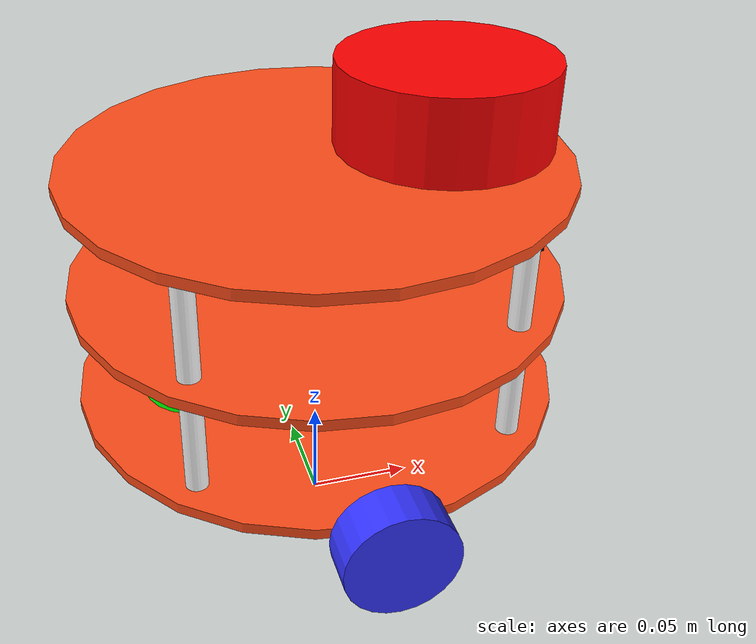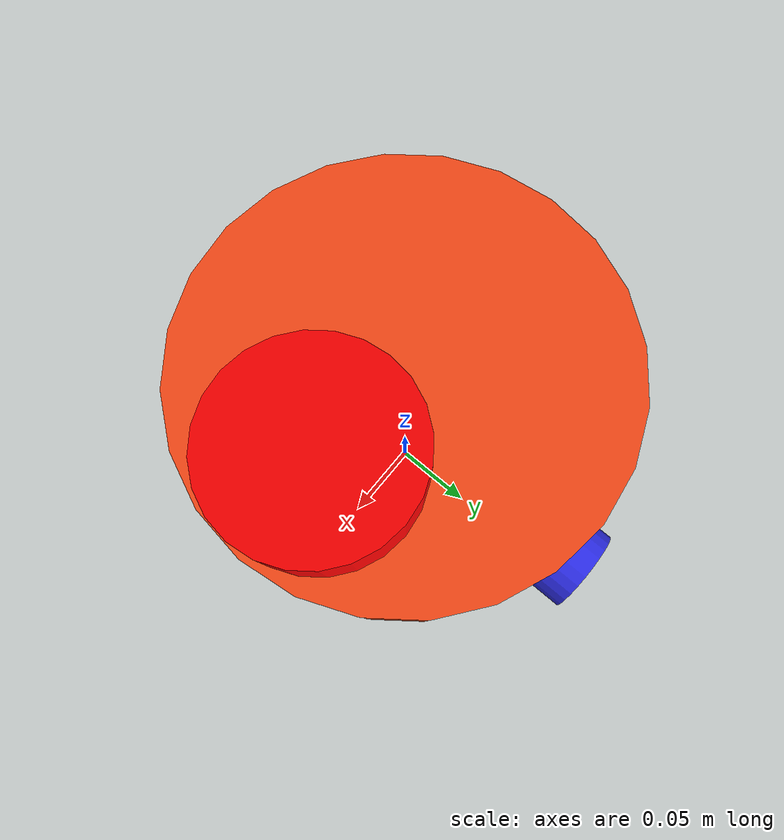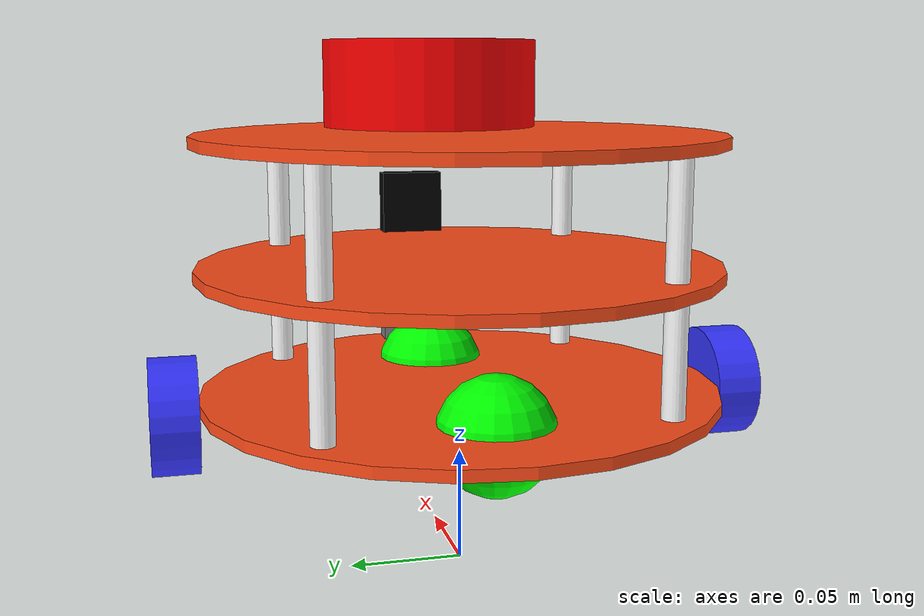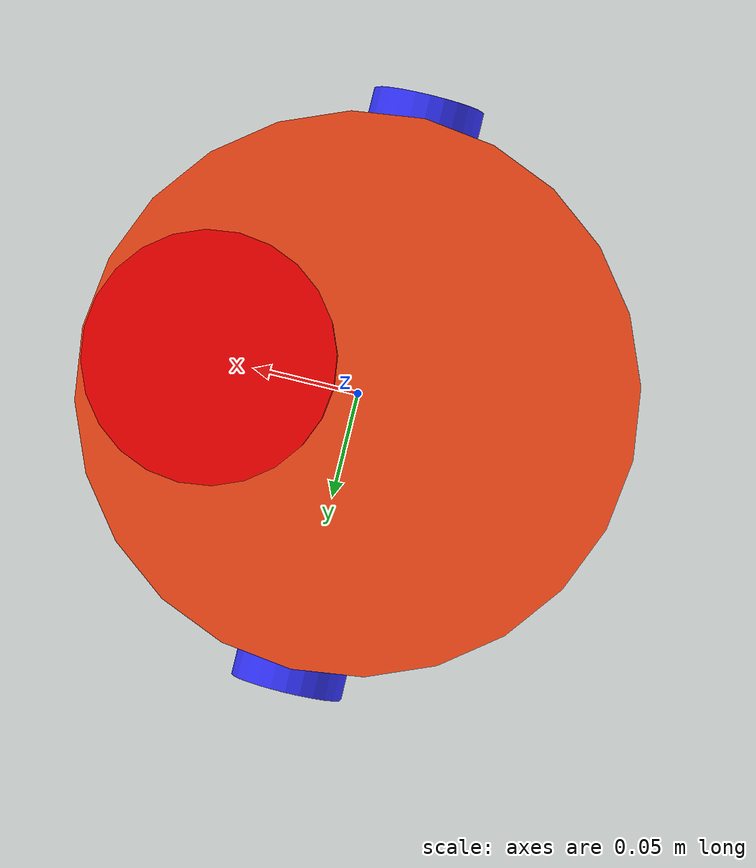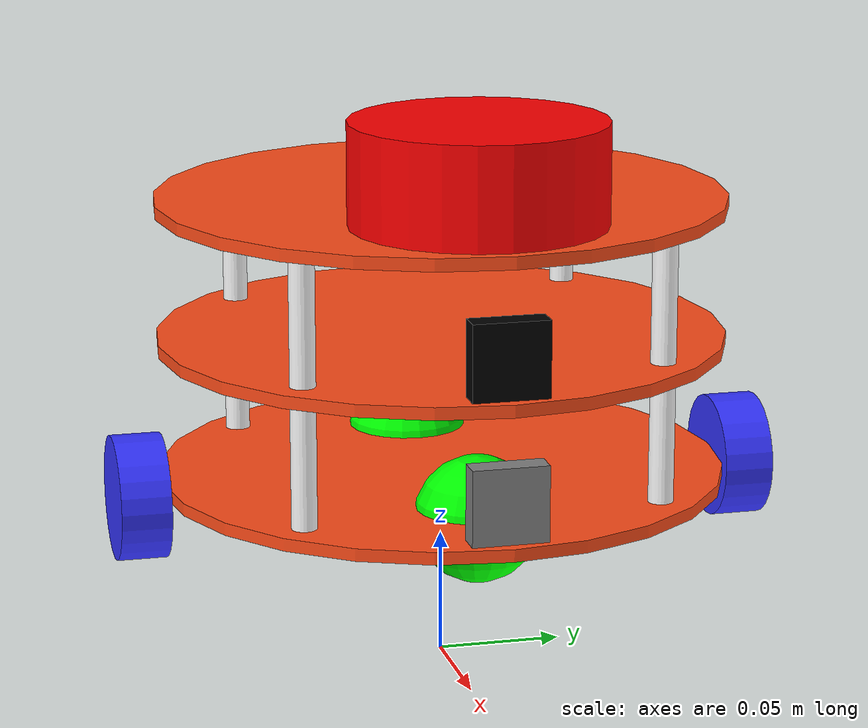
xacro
<?xml version="1.0"?>
<robot xmlns:xacro="http://www.ros.org/wiki/xacro"  name="mobile_robot">

    <xacro:arg name="use_ros2_control" default="true"/>

    <!--
        ##################################################
            include other xacro files
        ##################################################
    -->

    <xacro:include filename="material_colors.xacro"/>
    <xacro:include filename="robot_core.xacro"/>

    <xacro:if value="$(arg use_ros2_control)">
        <xacro:include filename="ros2_control.xacro"/>
    </xacro:if>
    <xacro:unless value="$(arg use_ros2_control)">
        <xacro:include filename="gazebo_control.xacro"/>
    </xacro:unless>

    <!--
        ##################################################
            include other xacro files
        ##################################################
    -->

    <xacro:include filename="robot_sensors/lidar.xacro"/>
    <xacro:include filename="robot_sensors/camera.xacro"/>
    <xacro:include filename="robot_sensors/depth_camera.xacro"/>

    <!--
        ##################################################
            LIDAR sensor
        ##################################################
    -->

    <xacro:robot_lidar
        parent="third_base_plate_link"
        child="laser_frame"
        x="0.174" y="0" z="0.025"
        row="0" pitch="0" yaw="0"
    />

    <!--
        ##################################################
            Camera sensor
        ##################################################
    -->

    <xacro:robot_camera
        parent="first_base_plate_link"
        child="camera_frame"
        x="0.2186" y="0" z="0.02"
        row="0" pitch="0" yaw="0"
    />

    <!--
        ##################################################
            Depth Camera sensor
        ##################################################
    -->

    <xacro:robot_depth_camera
        parent="second_base_plate_link"
        child="camera_depth_frame"
        x="0.2186" y="0" z="0.02"
        row="0" pitch="0" yaw="0"
    />

</robot>

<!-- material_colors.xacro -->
<robot xmlns:xacro="http://www.ros.org/wiki/xacro">

    <!-- Color links -->
    <material name="white">
        <color rgba="1 1 1 1"/>
    </material>

    <material name="orange">
        <color rgba="1 0.3 0.1 1"/>
    </material>

    <material name="blue">
        <color rgba="0.2 0.2 1 1"/>
    </material>

    <material name="black">
        <color rgba="0 0 0 1"/>
    </material>

    <material name="green">
        <color rgba="0 1 0 1"/>
    </material>

    <material name="grey">
        <color rgba="0.5 0.5 0.5 1"/>
    </material>

    <material name="red">
        <color rgba="1 0 0 1"/>
    </material>

</robot>

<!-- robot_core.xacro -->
<robot xmlns:xacro="http://www.ros.org/wiki/xacro">
    <!--
        ##################################################
            include other xacro files
        ##################################################
    -->

    <xacro:include filename="robot_parts/base_plate.xacro"/>
    <xacro:include filename="robot_parts/pillar.xacro"/>
    <xacro:include filename="robot_parts/drive_wheel.xacro"/>
    <xacro:include filename="robot_parts/caster_wheel.xacro"/>

    <!--
        ##################################################
            Base Link
        ##################################################
    -->

    <link name="base_link"/>

    <!--
        ##################################################
            Base Footprint Link
        ##################################################
    -->

    <joint name="base_footprint_joint" type="fixed">
        <parent link="base_link"/>
        <child link="base_footprint"/>
        <origin xyz="0 0 0" rpy="0 0 0"/>
    </joint>

    <link name="base_footprint"/>

    <xacro:robot_base_plate
        parent="base_link"
        child="first_base_plate_link"
        x="-0.1143" y="0" z="0.075"
        row="0" pitch="0" yaw="0"
    />

    <xacro:robot_base_plate
        parent="first_base_plate_link"
        child="second_base_plate_link"
        x="0" y="0" z="0.0558"
        row="0" pitch="0" yaw="0"
    />

    <xacro:robot_base_plate
        parent="second_base_plate_link"
        child="third_base_plate_link"
        x="0" y="0" z="0.0558"
        row="0" pitch="0" yaw="0"
    />

    <!--
        ##################################################
            Pillar offset variables
        ##################################################
    -->

    <xacro:property name="pillar_x_front" value="0.1851"/>
    <xacro:property name="pillar_x_back" value="0.0435"/>
    <xacro:property name="pillar_y_offset" value="0.0708"/>
    <xacro:property name="pillar_z_offset" value="0.005"/>

    <!--
        ##################################################
            Pillars for Base Plate 0
        ##################################################
    -->

    <xacro:robot_pillar
        parent="first_base_plate_link"
        child="first_base_plate_front_right_pillar_link"
        x="${pillar_x_front}" y="${pillar_y_offset}" z="${pillar_z_offset}"
        row="0" pitch="0" yaw="0"
    />

    <xacro:robot_pillar
        parent="first_base_plate_link"
        child="first_base_plate_front_left_pillar_link"
        x="${pillar_x_front}" y="${-pillar_y_offset}" z="${pillar_z_offset}"
        row="0" pitch="0" yaw="0"
    />

    <xacro:robot_pillar
        parent="first_base_plate_link"
        child="first_base_plate_back_right_pillar_link"
        x="${pillar_x_back}" y="${pillar_y_offset}" z="${pillar_z_offset}"
        row="0" pitch="0" yaw="0"
    />

    <xacro:robot_pillar
        parent="first_base_plate_link"
        child="first_base_plate_back_left_pillar_link"
        x="${pillar_x_back}" y="${-pillar_y_offset}" z="${pillar_z_offset}"
        row="0" pitch="0" yaw="0"
    />

    <!--
        ##################################################
            Pillars for Base Plate 1
        ##################################################
    -->

    <xacro:robot_pillar
        parent="second_base_plate_link"
        child="second_base_plate_front_right_pillar_link"
        x="${pillar_x_front}" y="${pillar_y_offset}" z="${pillar_z_offset}"
        row="0" pitch="0" yaw="0"
    />

    <xacro:robot_pillar
        parent="second_base_plate_link"
        child="second_base_plate_front_left_pillar_link"
        x="${pillar_x_front}" y="${-pillar_y_offset}" z="${pillar_z_offset}"
        row="0" pitch="0" yaw="0"
    />

    <xacro:robot_pillar
        parent="second_base_plate_link"
        child="second_base_plate_back_right_pillar_link"
        x="${pillar_x_back}" y="${pillar_y_offset}" z="${pillar_z_offset}"
        row="0" pitch="0" yaw="0"
    />

    <xacro:robot_pillar
        parent="second_base_plate_link"
        child="second_base_plate_back_left_pillar_link"
        x="${pillar_x_back}" y="${-pillar_y_offset}" z="${pillar_z_offset}"
        row="0" pitch="0" yaw="0"
    />

    <!--
        ##################################################
            Drive Wheels
        ##################################################
    -->

    <xacro:robot_wheel
        parent="base_link"
        child="left_wheel_link"
        x="0" y="0.124" z="0.075"
        row="${-pi/2}" pitch="0" yaw="0"
        a="0" b="0" c="1"
    />

    <xacro:robot_wheel
        parent="base_link"
        child="right_wheel_link"
        x="0" y="-0.124" z="0.075"
        row="${pi/2}" pitch="0" yaw="0"
        a="0" b="0" c="-1"
    />

    <xacro:robot_caster_wheel
        parent="first_base_plate_link"
        child="front_caster_wheel_link"
        x="0.174" y="0" z="0"
    />

    <xacro:robot_caster_wheel
        parent="first_base_plate_link"
        child="back_caster_wheel_link"
        x="0.0546" y="0" z="0"
    />

</robot>

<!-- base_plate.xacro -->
<robot xmlns:xacro="http://www.ros.org/wiki/xacro">
    <!-- user-defined parameters for the base plate -->
    <xacro:property name="plate_radius" value="0.1143"/>
    <xacro:property name="plate_length" value="0.005"/>
    <xacro:property name="plate_mass" value="0.5"/>
    <xacro:property name="I_plate" value="${(1/12) * (plate_mass) * ((3 * plate_radius * plate_radius) + (plate_length * plate_length))}"/>
    <xacro:property name="Iz_plate" value="${(1/2) * (plate_mass) * (plate_radius * plate_radius)}"/>

    <!-- base plate with user-defined parameters -->
    <xacro:macro name="robot_base_plate" params="parent child x y z row pitch yaw">

        <!-- joint -->
        <joint name="${child}_joint" type="fixed">
            <parent link="${parent}"/>
            <child link="${child}"/>
            <origin xyz="${x} ${y} ${z}" rpy="${row} ${pitch} ${yaw}"/>
        </joint>

        <!-- link -->
        <link name="${child}">
            <!-- visual -->
            <visual>
                <origin xyz="${plate_radius} 0 ${plate_length/2}" rpy="0 0 0"/>
                <geometry>
                    <cylinder radius="${plate_radius}" length="${plate_length}"/>
                </geometry>
                <material name="orange"/>
            </visual>

            <!-- collision -->
            <collision>
                <origin xyz="${plate_radius} 0 ${plate_length/2}" rpy="0 0 0"/>
                <geometry>
                    <cylinder radius="${plate_radius}" length="${plate_length}"/>
                </geometry>
            </collision>

            <!-- inertia -->
            <inertial>
                <origin xyz="${plate_radius} 0 ${plate_length/2}" rpy="0 0 0"/>
                <mass value="${plate_mass}"/>
                <inertia ixx="${I_plate}"
                        ixy="0.0"
                        ixz="0.0"
                        iyy="${I_plate}"
                        iyz="0.0"
                        izz="${Iz_plate}"/>
            </inertial>
        </link>

        <gazebo reference="${child}">
            <material>Gazebo/Orange</material>
        </gazebo>
    </xacro:macro>

</robot>

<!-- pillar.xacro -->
<robot xmlns:xacro="http://www.ros.org/wiki/xacro">
    <!-- user-defined parameters for the pillar -->
    <xacro:property name="pillar_radius" value="0.005"/>
    <xacro:property name="pillar_length" value="0.0508"/>
    <xacro:property name="pillar_mass" value="0.1"/>
    <xacro:property name="I_pillar" value="${(1/12) * (pillar_mass) * ((3 * pillar_radius * pillar_radius) + (pillar_length * pillar_length))}"/>
    <xacro:property name="Iz_pillar" value="${(1/2) * (pillar_mass) * (pillar_radius * pillar_radius)}"/>

    <!-- pillar with user-defined parameters -->
    <xacro:macro name="robot_pillar" params="parent child x y z row pitch yaw">
        <!-- joint -->
        <joint name="${child}_joint" type="fixed">
            <parent link="${parent}"/>
            <child link="${child}"/>
            <origin xyz="${x} ${y} ${z}" rpy="${row} ${pitch} ${yaw}"/>
        </joint>

        <!-- link -->
        <link name="${child}">
            <!-- visual -->
            <visual>
                <origin xyz="0 0 ${pillar_length/2}" rpy="0 0 0"/>
                <geometry>
                    <cylinder radius="${pillar_radius}" length="${pillar_length}"/>
                </geometry>
                <material name="white"/>
            </visual>

            <!-- collision -->
            <collision>
                <origin xyz="0 0 ${pillar_length/2}" rpy="0 0 0"/>
                <geometry>
                    <cylinder radius="${pillar_radius}" length="${pillar_length}"/>
                </geometry>
            </collision>

            <!-- inertia -->
            <inertial>
                <origin xyz="0 0 ${pillar_length/2}" rpy="0 0 0"/>
                <mass value="${pillar_mass}"/>
                <inertia ixx="${I_pillar}"
                        ixy="0.0"
                        ixz="0.0"
                        iyy="${I_pillar}"
                        iyz="0.0"
                        izz="${Iz_pillar}"/>
            </inertial>
        </link>

        <gazebo reference="${child}">
            <material>Gazebo/White</material>
        </gazebo>
    </xacro:macro>

</robot>

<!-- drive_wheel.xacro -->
<robot xmlns:xacro="http://www.ros.org/wiki/xacro">
    <!-- user-defined parameters for the wheel -->
    <xacro:property name="wheel_radius" value="0.025"/>
    <xacro:property name="wheel_length" value="0.02"/>
    <xacro:property name="wheel_mass" value="0.1"/>
    <xacro:property name="collision_radius" value="0.025"/>
    <xacro:property name="I_wheel" value="${(1/12) * (wheel_mass) * ((3 * wheel_radius * wheel_radius) + (wheel_length * wheel_length))}"/>
    <xacro:property name="Iz_wheel" value="${(1/2) * (wheel_mass) * (wheel_radius * wheel_radius)}"/>

    <!-- wheel with user-defined parameters -->
    <xacro:macro name="robot_wheel" params="parent child x y z row pitch yaw a b c">
        <!-- joint -->
        <joint name="${parent}_to_${child}_joint" type="continuous">
            <parent link="${parent}"/>
            <child link="${child}"/>
            <origin xyz="${x} ${y} ${z}" rpy="${row} ${pitch} ${yaw}"/>
            <axis xyz="${a} ${b} ${c}"/>
            <limit effort="10.0" velocity="40.0"/>
        </joint>

        <!-- link -->
        <link name="${child}">
            <!-- visual -->
            <visual>
                <origin xyz="0 0 0" rpy="0 0 0"/>
                <geometry>
                    <cylinder radius="${wheel_radius}" length="${wheel_length}"/>
                </geometry>
                <material name="blue"/>
            </visual>

            <!-- collision -->
            <collision>
                <origin xyz="0 0 0" rpy="0 0 0"/>
                <geometry>
                    <sphere radius="${collision_radius}"/>
                </geometry>
            </collision>

            <!-- inertia -->
            <inertial>
                <origin xyz="0 0 0" rpy="0 0 0"/>
                <mass value="${wheel_mass}"/>
                <inertia ixx="${I_wheel}"
                        ixy="0.0"
                        ixz="0.0"
                        iyy="${I_wheel}"
                        iyz="0.0"
                        izz="${Iz_wheel}"/>
            </inertial>
        </link>

        <gazebo reference="${child}">
            <material>Gazebo/Blue</material>
        </gazebo>
    </xacro:macro>

</robot>

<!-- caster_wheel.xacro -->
<robot xmlns:xacro="http://www.ros.org/wiki/xacro">
    <!-- user-defined parameters for the wheel -->
    <xacro:property name="wheel_radius" value="0.025"/>
    <xacro:property name="wheel_mass" value="0.1"/>
    <xacro:property name="I_wheel" value="${(2/5) * (wheel_mass) * (wheel_radius * wheel_radius)}"/>

    <!-- wheel with user-defined parameters -->
    <xacro:macro name="robot_caster_wheel" params="parent child x y z">
        <!-- joint -->
        <joint name="${parent}_to_${child}_joint" type="fixed">
            <parent link="${parent}"/>
            <child link="${child}"/>
            <origin xyz="${x} ${y} ${z}" rpy="0 0 0"/>
        </joint>

        <!-- link -->
        <link name="${child}">
            <!-- visual -->
            <visual>
                <origin xyz="0 0 0" rpy="0 0 0"/>
                <geometry>
                    <sphere radius="${wheel_radius}"/>
                </geometry>
                <material name="green"/>
            </visual>

            <!-- collision -->
            <collision>
                <origin xyz="0 0 0" rpy="0 0 0"/>
                <geometry>
                    <sphere radius="${wheel_radius}"/>
                </geometry>
            </collision>

            <!-- inertia -->
            <inertial>
                <origin xyz="0 0 0" rpy="0 0 0"/>
                <mass value="${wheel_mass}"/>
                <inertia ixx="${I_wheel}"
                        ixy="0.0"
                        ixz="0.0"
                        iyy="${I_wheel}"
                        iyz="0.0"
                        izz="${I_wheel}"/>
            </inertial>
        </link>

        <gazebo reference="${child}">
            <material>Gazebo/Green</material>
            <mu1 value="0.001"/>
            <mu2 value="0.001"/>
        </gazebo>
    </xacro:macro>

</robot>

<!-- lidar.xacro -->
<robot xmlns:xacro="http://www.ros.org/wiki/xacro">
    <!-- user-defined parameters for the lidar -->
    <xacro:property name="lidar_radius" value="0.05"/>
    <xacro:property name="lidar_length" value="0.04"/>
    <xacro:property name="lidar_mass" value="0.1"/>
    <xacro:property name="I_lidar" value="${(1/12) * (lidar_mass) * ((3 * lidar_radius * lidar_radius) + (lidar_length * lidar_length))}"/>
    <xacro:property name="Iz_lidar" value="${(1/2) * (lidar_mass) * (lidar_radius * lidar_radius)}"/>

    <!-- lidar with user-defined parameters -->
    <xacro:macro name="robot_lidar" params="parent child x y z row pitch yaw">

        <!-- joint -->
        <joint name="${child}_joint" type="fixed">
            <parent link="${parent}"/>
            <child link="${child}"/>
            <origin xyz="${x} ${y} ${z}" rpy="${row} ${pitch} ${yaw}"/>
        </joint>

        <!-- link -->
        <link name="${child}">
            <!-- visual -->
            <visual>
                <origin xyz="0 0 0" rpy="0 0 0"/>
                <geometry>
                    <cylinder radius="${lidar_radius}" length="${lidar_length}"/>
                </geometry>
                <material name="red"/>
            </visual>

            <!-- collision -->
            <collision>
                <origin xyz="0 0 0" rpy="0 0 0"/>
                <geometry>
                    <cylinder radius="${lidar_radius}" length="${lidar_length}"/>
                </geometry>
            </collision>

            <!-- inertia -->
            <inertial>
                <origin xyz="0 0 0" rpy="0 0 0"/>
                <mass value="${lidar_mass}"/>
                <inertia ixx="${I_lidar}"
                        ixy="0.0"
                        ixz="0.0"
                        iyy="${I_lidar}"
                        iyz="0.0"
                        izz="${Iz_lidar}"/>
            </inertial>
        </link>

        <!-- sensor -->
        <gazebo reference="${child}">
            <material>Gazebo/Red</material>

            <sensor name="gpu_lidar" type="gpu_lidar">
                <pose relative_to="${child}"> 0 0 0 0 0 0 </pose>
                <visualize>true</visualize>
                <update_rate>10</update_rate>
                <always_on>1</always_on>

                <lidar>
                    <scan>
                        <horizontal>
                            <samples>360</samples>
                            <min_angle>-3.14</min_angle>
                            <max_angle>3.14</max_angle>
                        </horizontal>
                    </scan>

                    <range>
                        <min>0.1</min>
                        <max>12</max>
                    </range>
                </lidar>

                <topic>scan</topic>
                <gz_frame_id>${child}</gz_frame_id>
            </sensor>
        </gazebo>
    </xacro:macro>

</robot>

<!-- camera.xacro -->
<robot xmlns:xacro="http://www.ros.org/wiki/xacro">
    <!-- user-defined parameters for the camera -->
    <xacro:property name="camera_length" value="0.01"/>
    <xacro:property name="camera_width" value="0.03"/>
    <xacro:property name="camera_height" value="0.03"/>
    <xacro:property name="camera_mass" value="0.1"/>
    <xacro:property name="Ix_camera" value="${(1/12) * (camera_mass) * ((camera_height * camera_height) + (camera_width * camera_width))}"/>
    <xacro:property name="Iy_camera" value="${(1/12) * (camera_mass) * ((camera_length * camera_length) + (camera_height * camera_height))}"/>
    <xacro:property name="Iz_camera" value="${(1/12) * (camera_mass) * ((camera_length * camera_length) + (camera_width * camera_width))}"/>

    <!-- camera with user-defined parameters -->
    <xacro:macro name="robot_camera" params="parent child x y z row pitch yaw">

        <!-- joint -->
        <joint name="${child}_joint" type="fixed">
            <parent link="${parent}"/>
            <child link="${child}"/>
            <origin xyz="${x} ${y} ${z}" rpy="${row} ${pitch} ${yaw}"/>
        </joint>

        <!-- link -->
        <link name="${child}">
            <!-- visual -->
            <visual>
                <origin xyz="0 0 0" rpy="0 0 0"/>
                <geometry>
                    <box size="${camera_length} ${camera_width} ${camera_height}"/>
                </geometry>
                <material name="grey"/>
            </visual>

            <!-- collision -->
            <collision>
                <origin xyz="0 0 0" rpy="0 0 0"/>
                <geometry>
                    <box size="${camera_length} ${camera_width} ${camera_height}"/>
                </geometry>
            </collision>

            <!-- inertia -->
            <inertial>
                <origin xyz="0 0 0" rpy="0 0 0"/>
                <mass value="${camera_mass}"/>
                <inertia ixx="${Ix_camera}"
                        ixy="0.0"
                        ixz="0.0"
                        iyy="${Iy_camera}"
                        iyz="0.0"
                        izz="${Iz_camera}"/>
            </inertial>
        </link>

        <!-- joint -->
        <joint name="${child}_optical_joint" type="fixed">
            <parent link="${child}"/>
            <child link="${child}_optical"/>
            <origin xyz="0 0 0" rpy="${-pi/2} 0 ${-pi/2}"/>
        </joint>

        <!-- link -->
        <link name="${child}_optical"></link>

        <gazebo reference="${child}">
            <material>Gazebo/Grey</material>

            <sensor name="camera" type="camera">
                <pose relative_to="${child}"> 0 0 0 0 0 0 </pose>
                <visualize>true</visualize>
                <update_rate>10</update_rate>
                <always_on>1</always_on>

                <camera>
                    <camera_info_topic>camera/camera_info</camera_info_topic>
                    <horizontal_fov>1.089</horizontal_fov>

                    <image>
                        <format>R8G8B8</format>
                        <width>1920</width>
                        <height>1080</height>
                    </image>

                    <clip>
                        <near>0.05</near>
                        <far>8.0</far>
                    </clip>
                </camera>

                <topic>camera/image_raw</topic>
                <gz_frame_id>${child}_optical</gz_frame_id>
            </sensor>
        </gazebo>
    </xacro:macro>

</robot>

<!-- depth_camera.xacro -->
<robot xmlns:xacro="http://www.ros.org/wiki/xacro">
    <!-- user-defined parameters for the camera -->
    <xacro:property name="camera_length" value="0.01"/>
    <xacro:property name="camera_width" value="0.03"/>
    <xacro:property name="camera_height" value="0.03"/>
    <xacro:property name="camera_mass" value="0.1"/>
    <xacro:property name="Ix_camera" value="${(1/12) * (camera_mass) * ((camera_height * camera_height) + (camera_width * camera_width))}"/>
    <xacro:property name="Iy_camera" value="${(1/12) * (camera_mass) * ((camera_length * camera_length) + (camera_height * camera_height))}"/>
    <xacro:property name="Iz_camera" value="${(1/12) * (camera_mass) * ((camera_length * camera_length) + (camera_width * camera_width))}"/>

    <!-- camera with user-defined parameters -->
    <xacro:macro name="robot_depth_camera" params="parent child x y z row pitch yaw">

        <!-- joint -->
        <joint name="${child}_joint" type="fixed">
            <parent link="${parent}"/>
            <child link="${child}"/>
            <origin xyz="${x} ${y} ${z}" rpy="${row} ${pitch} ${yaw}"/>
        </joint>

        <!-- link -->
        <link name="${child}">
            <!-- visual -->
            <visual>
                <origin xyz="0 0 0" rpy="0 0 0"/>
                <geometry>
                    <box size="${camera_length} ${camera_width} ${camera_height}"/>
                </geometry>
                <material name="black"/>
            </visual>

            <!-- collision -->
            <collision>
                <origin xyz="0 0 0" rpy="0 0 0"/>
                <geometry>
                    <box size="${camera_length} ${camera_width} ${camera_height}"/>
                </geometry>
            </collision>

            <!-- inertia -->
            <inertial>
                <origin xyz="0 0 0" rpy="0 0 0"/>
                <mass value="${camera_mass}"/>
                <inertia ixx="${Ix_camera}"
                        ixy="0.0"
                        ixz="0.0"
                        iyy="${Iy_camera}"
                        iyz="0.0"
                        izz="${Iz_camera}"/>
            </inertial>
        </link>

        <!-- joint -->
        <joint name="${child}_optical_joint" type="fixed">
            <parent link="${child}"/>
            <child link="${child}_optical"/>
            <origin xyz="0 0 0" rpy="0 0 0"/>
        </joint>

        <!-- link -->
        <link name="${child}_optical"></link>

        <gazebo reference="${child}">
            <material>Gazebo/Black</material>

            <sensor name="depth_camera" type="depth_camera">
                <pose relative_to="${child}"> 0 0 0 0 0 0 </pose>
                <visualize>true</visualize>
                <update_rate>10</update_rate>
                <always_on>1</always_on>

                <camera>
                    <camera_info_topic>depth_camera/camera_info</camera_info_topic>
                    <horizontal_fov>1.089</horizontal_fov>

                    <image>
                        <format>R_FLOAT32</format>
                        <width>1920</width>
                        <height>1080</height>
                    </image>

                    <clip>
                        <near>0.05</near>
                        <far>8.0</far>
                    </clip>
                </camera>

                <topic>depth_camera/image_raw</topic>
                <gz_frame_id>${child}_optical</gz_frame_id>
            </sensor>
        </gazebo>
    </xacro:macro>

</robot>
